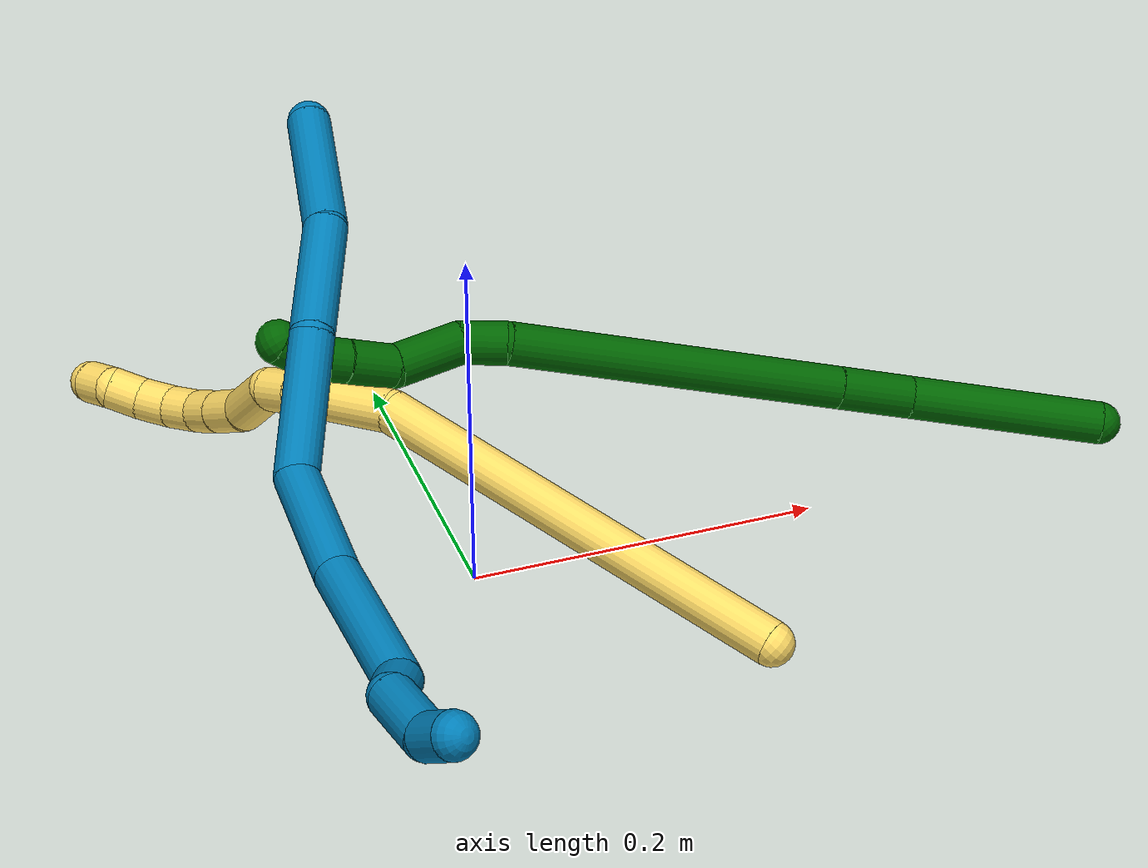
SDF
<sdf version="1.7">
 <world name="default">
  <model name="photoneo_s_sensor">
   <static>1</static>
   <pose>0 0 2 1.57079 1.57079 3.14159</pose>
   <link name="link">
    <inertial><mass>0.1</mass></inertial>
    <sensor name="sensor" type="depth">
     <update_rate>30</update_rate>
     <camera>
      <horizontal_fov>1.22</horizontal_fov>
      <image><width>1920</width><height>1200</height><format>B8G8R8</format></image>
      <clip><near>0.1</near><far>4</far></clip>
      <depth_camera><output>points</output></depth_camera>
     </camera>
     <plugin name="camera_plugin" filename="libgazebo_ros_depth_camera.so">
      <baseline>0.2</baseline>
      <alwaysOn>1</alwaysOn>
      <updateRate>0.0</updateRate>
      <cameraName>camera_ir</cameraName>
      <imageTopicName>/camera/color/image_raw</imageTopicName>
      <cameraInfoTopicName>/camera/color/camera_info</cameraInfoTopicName>
      <depthImageTopicName>/camera/depth/image_raw</depthImageTopicName>
      <depthImageCameraInfoTopicName>/camera/depth/camera_info</depthImageCameraInfoTopicName>
      <pointCloudTopicName>/camera/depth/points</pointCloudTopicName>
      <frameName>fr_optical</frameName>
      <pointCloudCutoff>0.1</pointCloudCutoff>
      <pointCloudCutoffMax>2.0</pointCloudCutoffMax>
      <distortionK1>0</distortionK1>
      <distortionK2>0</distortionK2>
      <distortionK3>0</distortionK3>
      <distortionT1>0</distortionT1>
      <distortionT2>0</distortionT2>
      <CxPrime>0</CxPrime>
      <Cx>0</Cx>
      <Cy>0</Cy>
      <focalLength>0</focalLength>
      <hackBaseline>0</hackBaseline>
     </plugin>
    </sensor>
   </link>
  </model>
  <model name="bin">
   <static>1</static>
   <link name="bottom">
    <collision name="collision-bottom">
     <pose>0 0 -0.01 0 -0 0</pose>
     <geometry><box><size>0.8 0.6 0.02</size></box></geometry>
     <surface>
      <friction><ode><mu>100</mu><mu2>100</mu2></ode></friction>
      <contact><collide_bitmask>65535</collide_bitmask></contact>
     </surface>
    </collision>
   </link>
   <link name="west_wall">
    <collision name="collision-west_wall">
     <pose>-0.41 0 0.1 0 -0 0</pose>
     <geometry><box><size>0.02 0.6 0.2</size></box></geometry>
     <surface>
      <friction><ode><mu>100</mu><mu2>100</mu2></ode></friction>
      <contact><collide_bitmask>65535</collide_bitmask></contact>
     </surface>
    </collision>
   </link>
   <link name="east_wall">
    <collision name="collision-east_wall">
     <pose>0.41 0 0.1 0 -0 0</pose>
     <geometry><box><size>0.02 0.6 0.2</size></box></geometry>
     <surface>
      <friction><ode><mu>100</mu><mu2>100</mu2></ode></friction>
      <contact><collide_bitmask>65535</collide_bitmask></contact>
     </surface>
    </collision>
   </link>
   <link name="south_wall">
    <collision name="collision-south_wall">
     <pose>0 -0.31 0.1 0 -0 0</pose>
     <geometry><box><size>0.8 0.02 0.2</size></box></geometry>
     <surface>
      <friction><ode><mu>100</mu><mu2>100</mu2></ode></friction>
      <contact><collide_bitmask>65535</collide_bitmask></contact>
     </surface>
    </collision>
   </link>
   <link name="north_wall">
    <collision name="collision-north_wall">
     <pose>0 0.31 0.1 0 -0 0</pose>
     <geometry><box><size>0.8 0.02 0.2</size></box></geometry>
     <surface>
      <friction><ode><mu>100</mu><mu2>100</mu2></ode></friction>
      <contact><collide_bitmask>65535</collide_bitmask></contact>
     </surface>
    </collision>
   </link>
  </model>
  <model name="5">
   <static>0</static>
   <link name="5">
    <collision name="collision-cylinder-e_1_1_4">
     <pose>-0.039297 0.060567 -0.10414 -2.61482 -0.315313 1.06541</pose>
     <geometry><cylinder><radius>0.0125</radius><length>0.253438</length></cylinder></geometry>
     <surface>
      <friction><ode><mu>1.16</mu><mu2>1.16</mu2><slip1>0</slip1><slip2>0</slip2></ode></friction>
      <contact><ode><kp>1e+06</kp><kd>1</kd><max_vel>0</max_vel><min_depth>0.001</min_depth></ode></contact>
     </surface>
    </collision>
    <visual name="visual-cylinder-e_1_1_4">
     <pose>-0.039297 0.060567 -0.10414 -2.61482 -0.315313 1.06541</pose>
     <geometry><cylinder><radius>0.0125</radius><length>0.253438</length></cylinder></geometry>
     <material><ambient>1 0.858824 0.4 1</ambient></material>
    </visual>
    <collision name="collision-cylinder-e_2_4_5">
     <pose>-0.083142 0.143078 -0.22891 -2.32537 -0.149844 0.343774</pose>
     <geometry><cylinder><radius>0.0125</radius><length>0.06092</length></cylinder></geometry>
     <surface>
      <friction><ode><mu>1.16</mu><mu2>1.16</mu2><slip1>0</slip1><slip2>0</slip2></ode></friction>
      <contact><ode><kp>1e+06</kp><kd>1</kd><max_vel>0</max_vel><min_depth>0.001</min_depth></ode></contact>
     </surface>
    </collision>
    <visual name="visual-cylinder-e_2_4_5">
     <pose>-0.083142 0.143078 -0.22891 -2.32537 -0.149844 0.343774</pose>
     <geometry><cylinder><radius>0.0125</radius><length>0.06092</length></cylinder></geometry>
     <material><ambient>1 0.858824 0.4 1</ambient></material>
    </visual>
    <collision name="collision-cylinder-e_3_5_6">
     <pose>-0.091238 0.173875 -0.254785 -2.10553 -0.332045 0.571883</pose>
     <geometry><cylinder><radius>0.0125</radius><length>0.02177</length></cylinder></geometry>
     <surface>
      <friction><ode><mu>1.16</mu><mu2>1.16</mu2><slip1>0</slip1><slip2>0</slip2></ode></friction>
      <contact><ode><kp>1e+06</kp><kd>1</kd><max_vel>0</max_vel><min_depth>0.001</min_depth></ode></contact>
     </surface>
    </collision>
    <visual name="visual-cylinder-e_3_5_6">
     <pose>-0.091238 0.173875 -0.254785 -2.10553 -0.332045 0.571883</pose>
     <geometry><cylinder><radius>0.0125</radius><length>0.02177</length></cylinder></geometry>
     <material><ambient>1 0.858824 0.4 1</ambient></material>
    </visual>
    <collision name="collision-cylinder-e_4_6_7">
     <pose>-0.100296 0.200286 -0.259446 -1.53758 -0.30397 0.294183</pose>
     <geometry><cylinder><radius>0.0125</radius><length>0.036822</length></cylinder></geometry>
     <surface>
      <friction><ode><mu>1.16</mu><mu2>1.16</mu2><slip1>0</slip1><slip2>0</slip2></ode></friction>
      <contact><ode><kp>1e+06</kp><kd>1</kd><max_vel>0</max_vel><min_depth>0.001</min_depth></ode></contact>
     </surface>
    </collision>
    <visual name="visual-cylinder-e_4_6_7">
     <pose>-0.100296 0.200286 -0.259446 -1.53758 -0.30397 0.294183</pose>
     <geometry><cylinder><radius>0.0125</radius><length>0.036822</length></cylinder></geometry>
     <material><ambient>1 0.858824 0.4 1</ambient></material>
    </visual>
    <collision name="collision-cylinder-e_5_7_8">
     <pose>-0.110284 0.228722 -0.262511 -1.8944 -0.371988 0.511696</pose>
     <geometry><cylinder><radius>0.0125</radius><length>0.024634</length></cylinder></geometry>
     <surface>
      <friction><ode><mu>1.16</mu><mu2>1.16</mu2><slip1>0</slip1><slip2>0</slip2></ode></friction>
      <contact><ode><kp>1e+06</kp><kd>1</kd><max_vel>0</max_vel><min_depth>0.001</min_depth></ode></contact>
     </surface>
    </collision>
    <visual name="visual-cylinder-e_5_7_8">
     <pose>-0.110284 0.228722 -0.262511 -1.8944 -0.371988 0.511696</pose>
     <geometry><cylinder><radius>0.0125</radius><length>0.024634</length></cylinder></geometry>
     <material><ambient>1 0.858824 0.4 1</ambient></material>
    </visual>
    <collision name="collision-cylinder-e_6_8_9">
     <pose>-0.11882 0.248512 -0.269625 -1.94172 -0.401505 0.578298</pose>
     <geometry><cylinder><radius>0.0125</radius><length>0.020774</length></cylinder></geometry>
     <surface>
      <friction><ode><mu>1.16</mu><mu2>1.16</mu2><slip1>0</slip1><slip2>0</slip2></ode></friction>
      <contact><ode><kp>1e+06</kp><kd>1</kd><max_vel>0</max_vel><min_depth>0.001</min_depth></ode></contact>
     </surface>
    </collision>
    <visual name="visual-cylinder-e_6_8_9">
     <pose>-0.11882 0.248512 -0.269625 -1.94172 -0.401505 0.578298</pose>
     <geometry><cylinder><radius>0.0125</radius><length>0.020774</length></cylinder></geometry>
     <material><ambient>1 0.858824 0.4 1</ambient></material>
    </visual>
    <collision name="collision-cylinder-e_7_9_10">
     <pose>-0.125722 0.265532 -0.278692 -2.17524 -0.280781 0.526229</pose>
     <geometry><cylinder><radius>0.0125</radius><length>0.020514</length></cylinder></geometry>
     <surface>
      <friction><ode><mu>1.16</mu><mu2>1.16</mu2><slip1>0</slip1><slip2>0</slip2></ode></friction>
      <contact><ode><kp>1e+06</kp><kd>1</kd><max_vel>0</max_vel><min_depth>0.001</min_depth></ode></contact>
     </surface>
    </collision>
    <visual name="visual-cylinder-e_7_9_10">
     <pose>-0.125722 0.265532 -0.278692 -2.17524 -0.280781 0.526229</pose>
     <geometry><cylinder><radius>0.0125</radius><length>0.020514</length></cylinder></geometry>
     <material><ambient>1 0.858824 0.4 1</ambient></material>
    </visual>
    <collision name="collision-cylinder-e_8_10_11">
     <pose>-0.13018 0.280763 -0.291846 -2.38561 -0.154481 0.384984</pose>
     <geometry><cylinder><radius>0.0125</radius><length>0.021012</length></cylinder></geometry>
     <surface>
      <friction><ode><mu>1.16</mu><mu2>1.16</mu2><slip1>0</slip1><slip2>0</slip2></ode></friction>
      <contact><ode><kp>1e+06</kp><kd>1</kd><max_vel>0</max_vel><min_depth>0.001</min_depth></ode></contact>
     </surface>
    </collision>
    <visual name="visual-cylinder-e_8_10_11">
     <pose>-0.13018 0.280763 -0.291846 -2.38561 -0.154481 0.384984</pose>
     <geometry><cylinder><radius>0.0125</radius><length>0.021012</length></cylinder></geometry>
     <material><ambient>1 0.858824 0.4 1</ambient></material>
    </visual>
    <collision name="collision-cylinder-e_9_11_12">
     <pose>-0.131747 0.292696 -0.308177 -2.64016 0.004979 -0.019441</pose>
     <geometry><cylinder><radius>0.0125</radius><length>0.020022</length></cylinder></geometry>
     <surface>
      <friction><ode><mu>1.16</mu><mu2>1.16</mu2><slip1>0</slip1><slip2>0</slip2></ode></friction>
      <contact><ode><kp>1e+06</kp><kd>1</kd><max_vel>0</max_vel><min_depth>0.001</min_depth></ode></contact>
     </surface>
    </collision>
    <visual name="visual-cylinder-e_9_11_12">
     <pose>-0.131747 0.292696 -0.308177 -2.64016 0.004979 -0.019441</pose>
     <geometry><cylinder><radius>0.0125</radius><length>0.020022</length></cylinder></geometry>
     <material><ambient>1 0.858824 0.4 1</ambient></material>
    </visual>
    <collision name="collision-cylinder-e_10_12_2">
     <pose>-0.13575 0.305183 -0.322016 -2.15373 -0.415234 0.745834</pose>
     <geometry><cylinder><radius>0.0125</radius><length>0.020094</length></cylinder></geometry>
     <surface>
      <friction><ode><mu>1.16</mu><mu2>1.16</mu2><slip1>0</slip1><slip2>0</slip2></ode></friction>
      <contact><ode><kp>1e+06</kp><kd>1</kd><max_vel>0</max_vel><min_depth>0.001</min_depth></ode></contact>
     </surface>
    </collision>
    <visual name="visual-cylinder-e_10_12_2">
     <pose>-0.13575 0.305183 -0.322016 -2.15373 -0.415234 0.745834</pose>
     <geometry><cylinder><radius>0.0125</radius><length>0.020094</length></cylinder></geometry>
     <material><ambient>1 0.858824 0.4 1</ambient></material>
    </visual>
    <collision name="collision-sphere-2">
     <pose>-0.139803 0.312858 -0.327077 0 -0 0</pose>
     <geometry><sphere><radius>0.0125</radius></sphere></geometry>
     <surface>
      <friction><ode><mu>1.16</mu><mu2>1.16</mu2><slip1>0</slip1><slip2>0</slip2></ode></friction>
      <contact><ode><kp>1e+06</kp><kd>1</kd><max_vel>0</max_vel><min_depth>0.001</min_depth></ode></contact>
     </surface>
    </collision>
    <visual name="visual-sphere-2">
     <pose>-0.139803 0.312858 -0.327077 0 -0 0</pose>
     <geometry><sphere><radius>0.0125</radius></sphere></geometry>
     <material><ambient>1 0.858824 0.4 1</ambient></material>
    </visual>
    <collision name="collision-sphere-12">
     <pose>-0.131697 0.297508 -0.316956 0 -0 0</pose>
     <geometry><sphere><radius>0.0125</radius></sphere></geometry>
     <surface>
      <friction><ode><mu>1.16</mu><mu2>1.16</mu2><slip1>0</slip1><slip2>0</slip2></ode></friction>
      <contact><ode><kp>1e+06</kp><kd>1</kd><max_vel>0</max_vel><min_depth>0.001</min_depth></ode></contact>
     </surface>
    </collision>
    <visual name="visual-sphere-12">
     <pose>-0.131697 0.297508 -0.316956 0 -0 0</pose>
     <geometry><sphere><radius>0.0125</radius></sphere></geometry>
     <material><ambient>1 0.858824 0.4 1</ambient></material>
    </visual>
    <collision name="collision-sphere-11">
     <pose>-0.131797 0.287884 -0.299399 0 -0 0</pose>
     <geometry><sphere><radius>0.0125</radius></sphere></geometry>
     <surface>
      <friction><ode><mu>1.16</mu><mu2>1.16</mu2><slip1>0</slip1><slip2>0</slip2></ode></friction>
      <contact><ode><kp>1e+06</kp><kd>1</kd><max_vel>0</max_vel><min_depth>0.001</min_depth></ode></contact>
     </surface>
    </collision>
    <visual name="visual-sphere-11">
     <pose>-0.131797 0.287884 -0.299399 0 -0 0</pose>
     <geometry><sphere><radius>0.0125</radius></sphere></geometry>
     <material><ambient>1 0.858824 0.4 1</ambient></material>
    </visual>
    <collision name="collision-sphere-10">
     <pose>-0.128564 0.273641 -0.284293 0 -0 0</pose>
     <geometry><sphere><radius>0.0125</radius></sphere></geometry>
     <surface>
      <friction><ode><mu>1.16</mu><mu2>1.16</mu2><slip1>0</slip1><slip2>0</slip2></ode></friction>
      <contact><ode><kp>1e+06</kp><kd>1</kd><max_vel>0</max_vel><min_depth>0.001</min_depth></ode></contact>
     </surface>
    </collision>
    <visual name="visual-sphere-10">
     <pose>-0.128564 0.273641 -0.284293 0 -0 0</pose>
     <geometry><sphere><radius>0.0125</radius></sphere></geometry>
     <material><ambient>1 0.858824 0.4 1</ambient></material>
    </visual>
    <collision name="collision-sphere-9">
     <pose>-0.122879 0.257423 -0.273091 0 -0 0</pose>
     <geometry><sphere><radius>0.0125</radius></sphere></geometry>
     <surface>
      <friction><ode><mu>1.16</mu><mu2>1.16</mu2><slip1>0</slip1><slip2>0</slip2></ode></friction>
      <contact><ode><kp>1e+06</kp><kd>1</kd><max_vel>0</max_vel><min_depth>0.001</min_depth></ode></contact>
     </surface>
    </collision>
    <visual name="visual-sphere-9">
     <pose>-0.122879 0.257423 -0.273091 0 -0 0</pose>
     <geometry><sphere><radius>0.0125</radius></sphere></geometry>
     <material><ambient>1 0.858824 0.4 1</ambient></material>
    </visual>
    <collision name="collision-sphere-4">
     <pose>-0.078595 0.121134 -0.208279 0 -0 0</pose>
     <geometry><sphere><radius>0.0125</radius></sphere></geometry>
     <surface>
      <friction><ode><mu>1.16</mu><mu2>1.16</mu2><slip1>0</slip1><slip2>0</slip2></ode></friction>
      <contact><ode><kp>1e+06</kp><kd>1</kd><max_vel>0</max_vel><min_depth>0.001</min_depth></ode></contact>
     </surface>
    </collision>
    <visual name="visual-sphere-4">
     <pose>-0.078595 0.121134 -0.208279 0 -0 0</pose>
     <geometry><sphere><radius>0.0125</radius></sphere></geometry>
     <material><ambient>1 0.858824 0.4 1</ambient></material>
    </visual>
    <collision name="collision-sphere-1">
     <geometry><sphere><radius>0.0125</radius></sphere></geometry>
     <surface>
      <friction><ode><mu>1.16</mu><mu2>1.16</mu2><slip1>0</slip1><slip2>0</slip2></ode></friction>
      <contact><ode><kp>1e+06</kp><kd>1</kd><max_vel>0</max_vel><min_depth>0.001</min_depth></ode></contact>
     </surface>
    </collision>
    <visual name="visual-sphere-1">
     <geometry><sphere><radius>0.0125</radius></sphere></geometry>
     <material><ambient>1 0.858824 0.4 1</ambient></material>
    </visual>
    <collision name="collision-sphere-8">
     <pose>-0.114761 0.239601 -0.26616 0 -0 0</pose>
     <geometry><sphere><radius>0.0125</radius></sphere></geometry>
     <surface>
      <friction><ode><mu>1.16</mu><mu2>1.16</mu2><slip1>0</slip1><slip2>0</slip2></ode></friction>
      <contact><ode><kp>1e+06</kp><kd>1</kd><max_vel>0</max_vel><min_depth>0.001</min_depth></ode></contact>
     </surface>
    </collision>
    <visual name="visual-sphere-8">
     <pose>-0.114761 0.239601 -0.26616 0 -0 0</pose>
     <geometry><sphere><radius>0.0125</radius></sphere></geometry>
     <material><ambient>1 0.858824 0.4 1</ambient></material>
    </visual>
    <collision name="collision-sphere-5">
     <pose>-0.087689 0.165021 -0.249541 0 -0 0</pose>
     <geometry><sphere><radius>0.0125</radius></sphere></geometry>
     <surface>
      <friction><ode><mu>1.16</mu><mu2>1.16</mu2><slip1>0</slip1><slip2>0</slip2></ode></friction>
      <contact><ode><kp>1e+06</kp><kd>1</kd><max_vel>0</max_vel><min_depth>0.001</min_depth></ode></contact>
     </surface>
    </collision>
    <visual name="visual-sphere-5">
     <pose>-0.087689 0.165021 -0.249541 0 -0 0</pose>
     <geometry><sphere><radius>0.0125</radius></sphere></geometry>
     <material><ambient>1 0.858824 0.4 1</ambient></material>
    </visual>
    <collision name="collision-sphere-6">
     <pose>-0.094786 0.182729 -0.260029 0 -0 0</pose>
     <geometry><sphere><radius>0.0125</radius></sphere></geometry>
     <surface>
      <friction><ode><mu>1.16</mu><mu2>1.16</mu2><slip1>0</slip1><slip2>0</slip2></ode></friction>
      <contact><ode><kp>1e+06</kp><kd>1</kd><max_vel>0</max_vel><min_depth>0.001</min_depth></ode></contact>
     </surface>
    </collision>
    <visual name="visual-sphere-6">
     <pose>-0.094786 0.182729 -0.260029 0 -0 0</pose>
     <geometry><sphere><radius>0.0125</radius></sphere></geometry>
     <material><ambient>1 0.858824 0.4 1</ambient></material>
    </visual>
    <collision name="collision-sphere-7">
     <pose>-0.105807 0.217843 -0.258862 0 -0 0</pose>
     <geometry><sphere><radius>0.0125</radius></sphere></geometry>
     <surface>
      <friction><ode><mu>1.16</mu><mu2>1.16</mu2><slip1>0</slip1><slip2>0</slip2></ode></friction>
      <contact><ode><kp>1e+06</kp><kd>1</kd><max_vel>0</max_vel><min_depth>0.001</min_depth></ode></contact>
     </surface>
    </collision>
    <visual name="visual-sphere-7">
     <pose>-0.105807 0.217843 -0.258862 0 -0 0</pose>
     <geometry><sphere><radius>0.0125</radius></sphere></geometry>
     <material><ambient>1 0.858824 0.4 1</ambient></material>
    </visual>
    <inertial>
     <pose>-0.073138 0.138725 -0.183992 0 -0 0</pose>
     <mass>0.5</mass>
     <inertia>
      <ixx>0.001803</ixx>
      <ixy>0</ixy>
      <ixz>0</ixz>
      <iyy>0.000773</iyy>
      <iyz>0</iyz>
      <izz>-0.000276</izz>
     </inertia>
    </inertial>
   </link>
   <pose>0.119752 -0.136232 0.022837 -2.30204 0.055838 -2.20296</pose>
  </model>
  <model name="6">
   <static>0</static>
   <link name="6">
    <collision name="collision-cylinder-e_1_1_4">
     <pose>-0.037699 0.009367 -0.041519 -2.91971 -0.724884 2.57011</pose>
     <geometry><cylinder><radius>0.0125</radius><length>0.113715</length></cylinder></geometry>
     <surface>
      <friction><ode><mu>1.16</mu><mu2>1.16</mu2><slip1>0</slip1><slip2>0</slip2></ode></friction>
      <contact><ode><kp>1e+06</kp><kd>1</kd><max_vel>0</max_vel><min_depth>0.001</min_depth></ode></contact>
     </surface>
    </collision>
    <visual name="visual-cylinder-e_1_1_4">
     <pose>-0.037699 0.009367 -0.041519 -2.91971 -0.724884 2.57011</pose>
     <geometry><cylinder><radius>0.0125</radius><length>0.113715</length></cylinder></geometry>
     <material><ambient>0 0.392157 0.003922 1</ambient></material>
    </visual>
    <collision name="collision-cylinder-e_2_4_5">
     <pose>-0.093296 0.018456 -0.097214 3.12203 -0.900785 -3.10114</pose>
     <geometry><cylinder><radius>0.0125</radius><length>0.045667</length></cylinder></geometry>
     <surface>
      <friction><ode><mu>1.16</mu><mu2>1.16</mu2><slip1>0</slip1><slip2>0</slip2></ode></friction>
      <contact><ode><kp>1e+06</kp><kd>1</kd><max_vel>0</max_vel><min_depth>0.001</min_depth></ode></contact>
     </surface>
    </collision>
    <visual name="visual-cylinder-e_2_4_5">
     <pose>-0.093296 0.018456 -0.097214 3.12203 -0.900785 -3.10114</pose>
     <geometry><cylinder><radius>0.0125</radius><length>0.045667</length></cylinder></geometry>
     <material><ambient>0 0.392157 0.003922 1</ambient></material>
    </visual>
    <collision name="collision-cylinder-e_3_5_6">
     <pose>-0.189592 0.017222 -0.173845 3.12629 -0.898063 -3.10983</pose>
     <geometry><cylinder><radius>0.0125</radius><length>0.200478</length></cylinder></geometry>
     <surface>
      <friction><ode><mu>1.16</mu><mu2>1.16</mu2><slip1>0</slip1><slip2>0</slip2></ode></friction>
      <contact><ode><kp>1e+06</kp><kd>1</kd><max_vel>0</max_vel><min_depth>0.001</min_depth></ode></contact>
     </surface>
    </collision>
    <visual name="visual-cylinder-e_3_5_6">
     <pose>-0.189592 0.017222 -0.173845 3.12629 -0.898063 -3.10983</pose>
     <geometry><cylinder><radius>0.0125</radius><length>0.200478</length></cylinder></geometry>
     <material><ambient>0 0.392157 0.003922 1</ambient></material>
    </visual>
    <collision name="collision-cylinder-e_4_6_7">
     <pose>-0.27595 0.017586 -0.247043 -3.01939 -0.634013 2.77287</pose>
     <geometry><cylinder><radius>0.0125</radius><length>0.026872</length></cylinder></geometry>
     <surface>
      <friction><ode><mu>1.16</mu><mu2>1.16</mu2><slip1>0</slip1><slip2>0</slip2></ode></friction>
      <contact><ode><kp>1e+06</kp><kd>1</kd><max_vel>0</max_vel><min_depth>0.001</min_depth></ode></contact>
     </surface>
    </collision>
    <visual name="visual-cylinder-e_4_6_7">
     <pose>-0.27595 0.017586 -0.247043 -3.01939 -0.634013 2.77287</pose>
     <geometry><cylinder><radius>0.0125</radius><length>0.026872</length></cylinder></geometry>
     <material><ambient>0 0.392157 0.003922 1</ambient></material>
    </visual>
    <collision name="collision-cylinder-e_5_7_8">
     <pose>-0.296592 0.009144 -0.272322 2.55019 -0.626906 -1.63282</pose>
     <geometry><cylinder><radius>0.0125</radius><length>0.043239</length></cylinder></geometry>
     <surface>
      <friction><ode><mu>1.16</mu><mu2>1.16</mu2><slip1>0</slip1><slip2>0</slip2></ode></friction>
      <contact><ode><kp>1e+06</kp><kd>1</kd><max_vel>0</max_vel><min_depth>0.001</min_depth></ode></contact>
     </surface>
    </collision>
    <visual name="visual-cylinder-e_5_7_8">
     <pose>-0.296592 0.009144 -0.272322 2.55019 -0.626906 -1.63282</pose>
     <geometry><cylinder><radius>0.0125</radius><length>0.043239</length></cylinder></geometry>
     <material><ambient>0 0.392157 0.003922 1</ambient></material>
    </visual>
    <collision name="collision-cylinder-e_6_8_9">
     <pose>-0.321041 -0.002706 -0.294252 2.8663 -0.992232 -2.64051</pose>
     <geometry><cylinder><radius>0.0125</radius><length>0.028105</length></cylinder></geometry>
     <surface>
      <friction><ode><mu>1.16</mu><mu2>1.16</mu2><slip1>0</slip1><slip2>0</slip2></ode></friction>
      <contact><ode><kp>1e+06</kp><kd>1</kd><max_vel>0</max_vel><min_depth>0.001</min_depth></ode></contact>
     </surface>
    </collision>
    <visual name="visual-cylinder-e_6_8_9">
     <pose>-0.321041 -0.002706 -0.294252 2.8663 -0.992232 -2.64051</pose>
     <geometry><cylinder><radius>0.0125</radius><length>0.028105</length></cylinder></geometry>
     <material><ambient>0 0.392157 0.003922 1</ambient></material>
    </visual>
    <collision name="collision-cylinder-e_7_9_10">
     <pose>-0.341165 -0.006008 -0.307351 2.93198 -0.961623 -2.74362</pose>
     <geometry><cylinder><radius>0.0125</radius><length>0.020383</length></cylinder></geometry>
     <surface>
      <friction><ode><mu>1.16</mu><mu2>1.16</mu2><slip1>0</slip1><slip2>0</slip2></ode></friction>
      <contact><ode><kp>1e+06</kp><kd>1</kd><max_vel>0</max_vel><min_depth>0.001</min_depth></ode></contact>
     </surface>
    </collision>
    <visual name="visual-cylinder-e_7_9_10">
     <pose>-0.341165 -0.006008 -0.307351 2.93198 -0.961623 -2.74362</pose>
     <geometry><cylinder><radius>0.0125</radius><length>0.020383</length></cylinder></geometry>
     <material><ambient>0 0.392157 0.003922 1</ambient></material>
    </visual>
    <collision name="collision-cylinder-e_8_10_2">
     <pose>-0.359609 -0.006542 -0.316772 -2.96067 -1.21237 2.88138</pose>
     <geometry><cylinder><radius>0.0125</radius><length>0.021541</length></cylinder></geometry>
     <surface>
      <friction><ode><mu>1.16</mu><mu2>1.16</mu2><slip1>0</slip1><slip2>0</slip2></ode></friction>
      <contact><ode><kp>1e+06</kp><kd>1</kd><max_vel>0</max_vel><min_depth>0.001</min_depth></ode></contact>
     </surface>
    </collision>
    <visual name="visual-cylinder-e_8_10_2">
     <pose>-0.359609 -0.006542 -0.316772 -2.96067 -1.21237 2.88138</pose>
     <geometry><cylinder><radius>0.0125</radius><length>0.021541</length></cylinder></geometry>
     <material><ambient>0 0.392157 0.003922 1</ambient></material>
    </visual>
    <collision name="collision-sphere-2">
     <pose>-0.369695 -0.005862 -0.320488 0 -0 0</pose>
     <geometry><sphere><radius>0.0125</radius></sphere></geometry>
     <surface>
      <friction><ode><mu>1.16</mu><mu2>1.16</mu2><slip1>0</slip1><slip2>0</slip2></ode></friction>
      <contact><ode><kp>1e+06</kp><kd>1</kd><max_vel>0</max_vel><min_depth>0.001</min_depth></ode></contact>
     </surface>
    </collision>
    <visual name="visual-sphere-2">
     <pose>-0.369695 -0.005862 -0.320488 0 -0 0</pose>
     <geometry><sphere><radius>0.0125</radius></sphere></geometry>
     <material><ambient>0 0.392157 0.003922 1</ambient></material>
    </visual>
    <collision name="collision-sphere-10">
     <pose>-0.349523 -0.007222 -0.313055 0 -0 0</pose>
     <geometry><sphere><radius>0.0125</radius></sphere></geometry>
     <surface>
      <friction><ode><mu>1.16</mu><mu2>1.16</mu2><slip1>0</slip1><slip2>0</slip2></ode></friction>
      <contact><ode><kp>1e+06</kp><kd>1</kd><max_vel>0</max_vel><min_depth>0.001</min_depth></ode></contact>
     </surface>
    </collision>
    <visual name="visual-sphere-10">
     <pose>-0.349523 -0.007222 -0.313055 0 -0 0</pose>
     <geometry><sphere><radius>0.0125</radius></sphere></geometry>
     <material><ambient>0 0.392157 0.003922 1</ambient></material>
    </visual>
    <collision name="collision-sphere-9">
     <pose>-0.332806 -0.004795 -0.301647 0 -0 0</pose>
     <geometry><sphere><radius>0.0125</radius></sphere></geometry>
     <surface>
      <friction><ode><mu>1.16</mu><mu2>1.16</mu2><slip1>0</slip1><slip2>0</slip2></ode></friction>
      <contact><ode><kp>1e+06</kp><kd>1</kd><max_vel>0</max_vel><min_depth>0.001</min_depth></ode></contact>
     </surface>
    </collision>
    <visual name="visual-sphere-9">
     <pose>-0.332806 -0.004795 -0.301647 0 -0 0</pose>
     <geometry><sphere><radius>0.0125</radius></sphere></geometry>
     <material><ambient>0 0.392157 0.003922 1</ambient></material>
    </visual>
    <collision name="collision-sphere-4">
     <pose>-0.075398 0.018733 -0.083037 0 -0 0</pose>
     <geometry><sphere><radius>0.0125</radius></sphere></geometry>
     <surface>
      <friction><ode><mu>1.16</mu><mu2>1.16</mu2><slip1>0</slip1><slip2>0</slip2></ode></friction>
      <contact><ode><kp>1e+06</kp><kd>1</kd><max_vel>0</max_vel><min_depth>0.001</min_depth></ode></contact>
     </surface>
    </collision>
    <visual name="visual-sphere-4">
     <pose>-0.075398 0.018733 -0.083037 0 -0 0</pose>
     <geometry><sphere><radius>0.0125</radius></sphere></geometry>
     <material><ambient>0 0.392157 0.003922 1</ambient></material>
    </visual>
    <collision name="collision-sphere-1">
     <geometry><sphere><radius>0.0125</radius></sphere></geometry>
     <surface>
      <friction><ode><mu>1.16</mu><mu2>1.16</mu2><slip1>0</slip1><slip2>0</slip2></ode></friction>
      <contact><ode><kp>1e+06</kp><kd>1</kd><max_vel>0</max_vel><min_depth>0.001</min_depth></ode></contact>
     </surface>
    </collision>
    <visual name="visual-sphere-1">
     <geometry><sphere><radius>0.0125</radius></sphere></geometry>
     <material><ambient>0 0.392157 0.003922 1</ambient></material>
    </visual>
    <collision name="collision-sphere-8">
     <pose>-0.309275 -0.000617 -0.286857 0 -0 0</pose>
     <geometry><sphere><radius>0.0125</radius></sphere></geometry>
     <surface>
      <friction><ode><mu>1.16</mu><mu2>1.16</mu2><slip1>0</slip1><slip2>0</slip2></ode></friction>
      <contact><ode><kp>1e+06</kp><kd>1</kd><max_vel>0</max_vel><min_depth>0.001</min_depth></ode></contact>
     </surface>
    </collision>
    <visual name="visual-sphere-8">
     <pose>-0.309275 -0.000617 -0.286857 0 -0 0</pose>
     <geometry><sphere><radius>0.0125</radius></sphere></geometry>
     <material><ambient>0 0.392157 0.003922 1</ambient></material>
    </visual>
    <collision name="collision-sphere-5">
     <pose>-0.111193 0.018178 -0.111391 0 -0 0</pose>
     <geometry><sphere><radius>0.0125</radius></sphere></geometry>
     <surface>
      <friction><ode><mu>1.16</mu><mu2>1.16</mu2><slip1>0</slip1><slip2>0</slip2></ode></friction>
      <contact><ode><kp>1e+06</kp><kd>1</kd><max_vel>0</max_vel><min_depth>0.001</min_depth></ode></contact>
     </surface>
    </collision>
    <visual name="visual-sphere-5">
     <pose>-0.111193 0.018178 -0.111391 0 -0 0</pose>
     <geometry><sphere><radius>0.0125</radius></sphere></geometry>
     <material><ambient>0 0.392157 0.003922 1</ambient></material>
    </visual>
    <collision name="collision-sphere-6">
     <pose>-0.267991 0.016266 -0.236299 0 -0 0</pose>
     <geometry><sphere><radius>0.0125</radius></sphere></geometry>
     <surface>
      <friction><ode><mu>1.16</mu><mu2>1.16</mu2><slip1>0</slip1><slip2>0</slip2></ode></friction>
      <contact><ode><kp>1e+06</kp><kd>1</kd><max_vel>0</max_vel><min_depth>0.001</min_depth></ode></contact>
     </surface>
    </collision>
    <visual name="visual-sphere-6">
     <pose>-0.267991 0.016266 -0.236299 0 -0 0</pose>
     <geometry><sphere><radius>0.0125</radius></sphere></geometry>
     <material><ambient>0 0.392157 0.003922 1</ambient></material>
    </visual>
    <collision name="collision-sphere-7">
     <pose>-0.283909 0.018906 -0.257788 0 -0 0</pose>
     <geometry><sphere><radius>0.0125</radius></sphere></geometry>
     <surface>
      <friction><ode><mu>1.16</mu><mu2>1.16</mu2><slip1>0</slip1><slip2>0</slip2></ode></friction>
      <contact><ode><kp>1e+06</kp><kd>1</kd><max_vel>0</max_vel><min_depth>0.001</min_depth></ode></contact>
     </surface>
    </collision>
    <visual name="visual-sphere-7">
     <pose>-0.283909 0.018906 -0.257788 0 -0 0</pose>
     <geometry><sphere><radius>0.0125</radius></sphere></geometry>
     <material><ambient>0 0.392157 0.003922 1</ambient></material>
    </visual>
    <inertial>
     <pose>-0.181039 0.011778 -0.167569 0 -0 0</pose>
     <mass>0.5</mass>
     <inertia>
      <ixx>-0.000512</ixx>
      <ixy>0</ixy>
      <ixz>0</ixz>
      <iyy>0.000845</iyy>
      <iyz>0</iyz>
      <izz>0.0006</izz>
     </inertia>
    </inertial>
   </link>
   <pose>0.388503 0.008076 0.011913 0.362778 0.915181 0.068497</pose>
  </model>
  <model name="9">
   <static>0</static>
   <link name="9">
    <collision name="collision-cylinder-e_1_1_4">
     <pose>-0.000506 -0.000716 0.011689 0.061139 -0.043151 -0.00132</pose>
     <geometry><cylinder><radius>0.0125</radius><length>0.023443</length></cylinder></geometry>
     <surface>
      <friction><ode><mu>1.16</mu><mu2>1.16</mu2><slip1>0</slip1><slip2>0</slip2></ode></friction>
      <contact><ode><kp>1e+06</kp><kd>1</kd><max_vel>0</max_vel><min_depth>0.001</min_depth></ode></contact>
     </surface>
    </collision>
    <visual name="visual-cylinder-e_1_1_4">
     <pose>-0.000506 -0.000716 0.011689 0.061139 -0.043151 -0.00132</pose>
     <geometry><cylinder><radius>0.0125</radius><length>0.023443</length></cylinder></geometry>
     <material><ambient>0 0.490196 0.709804 1</ambient></material>
    </visual>
    <collision name="collision-cylinder-e_2_4_5">
     <pose>-0.002334 0.007809 0.042449 -0.451167 -0.06235 0.014313</pose>
     <geometry><cylinder><radius>0.0125</radius><length>0.042467</length></cylinder></geometry>
     <surface>
      <friction><ode><mu>1.16</mu><mu2>1.16</mu2><slip1>0</slip1><slip2>0</slip2></ode></friction>
      <contact><ode><kp>1e+06</kp><kd>1</kd><max_vel>0</max_vel><min_depth>0.001</min_depth></ode></contact>
     </surface>
    </collision>
    <visual name="visual-cylinder-e_2_4_5">
     <pose>-0.002334 0.007809 0.042449 -0.451167 -0.06235 0.014313</pose>
     <geometry><cylinder><radius>0.0125</radius><length>0.042467</length></cylinder></geometry>
     <material><ambient>0 0.490196 0.709804 1</ambient></material>
    </visual>
    <collision name="collision-cylinder-e_3_5_6">
     <pose>-0.010436 0.021186 0.06945 -0.480845 -0.648633 0.164471</pose>
     <geometry><cylinder><radius>0.0125</radius><length>0.022443</length></cylinder></geometry>
     <surface>
      <friction><ode><mu>1.16</mu><mu2>1.16</mu2><slip1>0</slip1><slip2>0</slip2></ode></friction>
      <contact><ode><kp>1e+06</kp><kd>1</kd><max_vel>0</max_vel><min_depth>0.001</min_depth></ode></contact>
     </surface>
    </collision>
    <visual name="visual-cylinder-e_3_5_6">
     <pose>-0.010436 0.021186 0.06945 -0.480845 -0.648633 0.164471</pose>
     <geometry><cylinder><radius>0.0125</radius><length>0.022443</length></cylinder></geometry>
     <material><ambient>0 0.490196 0.709804 1</ambient></material>
    </visual>
    <collision name="collision-cylinder-e_4_6_7">
     <pose>-0.018749 0.051851 0.113291 -0.636238 -0.034345 0.011311</pose>
     <geometry><cylinder><radius>0.0125</radius><length>0.08935</length></cylinder></geometry>
     <surface>
      <friction><ode><mu>1.16</mu><mu2>1.16</mu2><slip1>0</slip1><slip2>0</slip2></ode></friction>
      <contact><ode><kp>1e+06</kp><kd>1</kd><max_vel>0</max_vel><min_depth>0.001</min_depth></ode></contact>
     </surface>
    </collision>
    <visual name="visual-cylinder-e_4_6_7">
     <pose>-0.018749 0.051851 0.113291 -0.636238 -0.034345 0.011311</pose>
     <geometry><cylinder><radius>0.0125</radius><length>0.08935</length></cylinder></geometry>
     <material><ambient>0 0.490196 0.709804 1</ambient></material>
    </visual>
    <collision name="collision-cylinder-e_5_7_8">
     <pose>-0.021607 0.104645 0.176683 -0.762792 -0.034797 0.013956</pose>
     <geometry><cylinder><radius>0.0125</radius><length>0.076072</length></cylinder></geometry>
     <surface>
      <friction><ode><mu>1.16</mu><mu2>1.16</mu2><slip1>0</slip1><slip2>0</slip2></ode></friction>
      <contact><ode><kp>1e+06</kp><kd>1</kd><max_vel>0</max_vel><min_depth>0.001</min_depth></ode></contact>
     </surface>
    </collision>
    <visual name="visual-cylinder-e_5_7_8">
     <pose>-0.021607 0.104645 0.176683 -0.762792 -0.034797 0.013956</pose>
     <geometry><cylinder><radius>0.0125</radius><length>0.076072</length></cylinder></geometry>
     <material><ambient>0 0.490196 0.709804 1</ambient></material>
    </visual>
    <collision name="collision-cylinder-e_6_8_9">
     <pose>-0.027311 0.170437 0.210861 -1.40294 -0.108843 0.091977</pose>
     <geometry><cylinder><radius>0.0125</radius><length>0.080659</length></cylinder></geometry>
     <surface>
      <friction><ode><mu>1.16</mu><mu2>1.16</mu2><slip1>0</slip1><slip2>0</slip2></ode></friction>
      <contact><ode><kp>1e+06</kp><kd>1</kd><max_vel>0</max_vel><min_depth>0.001</min_depth></ode></contact>
     </surface>
    </collision>
    <visual name="visual-cylinder-e_6_8_9">
     <pose>-0.027311 0.170437 0.210861 -1.40294 -0.108843 0.091977</pose>
     <geometry><cylinder><radius>0.0125</radius><length>0.080659</length></cylinder></geometry>
     <material><ambient>0 0.490196 0.709804 1</ambient></material>
    </visual>
    <collision name="collision-cylinder-e_7_9_10">
     <pose>-0.042063 0.243018 0.233692 -1.11674 -0.274846 0.172351</pose>
     <geometry><cylinder><radius>0.0125</radius><length>0.076431</length></cylinder></geometry>
     <surface>
      <friction><ode><mu>1.16</mu><mu2>1.16</mu2><slip1>0</slip1><slip2>0</slip2></ode></friction>
      <contact><ode><kp>1e+06</kp><kd>1</kd><max_vel>0</max_vel><min_depth>0.001</min_depth></ode></contact>
     </surface>
    </collision>
    <visual name="visual-cylinder-e_7_9_10">
     <pose>-0.042063 0.243018 0.233692 -1.11674 -0.274846 0.172351</pose>
     <geometry><cylinder><radius>0.0125</radius><length>0.076431</length></cylinder></geometry>
     <material><ambient>0 0.490196 0.709804 1</ambient></material>
    </visual>
    <collision name="collision-cylinder-e_8_10_2">
     <pose>-0.059386 0.310879 0.276777 -0.911908 -0.156612 0.076925</pose>
     <geometry><cylinder><radius>0.0125</radius><length>0.089135</length></cylinder></geometry>
     <surface>
      <friction><ode><mu>1.16</mu><mu2>1.16</mu2><slip1>0</slip1><slip2>0</slip2></ode></friction>
      <contact><ode><kp>1e+06</kp><kd>1</kd><max_vel>0</max_vel><min_depth>0.001</min_depth></ode></contact>
     </surface>
    </collision>
    <visual name="visual-cylinder-e_8_10_2">
     <pose>-0.059386 0.310879 0.276777 -0.911908 -0.156612 0.076925</pose>
     <geometry><cylinder><radius>0.0125</radius><length>0.089135</length></cylinder></geometry>
     <material><ambient>0 0.490196 0.709804 1</ambient></material>
    </visual>
    <collision name="collision-sphere-2">
     <pose>-0.066337 0.345686 0.303729 0 -0 0</pose>
     <geometry><sphere><radius>0.0125</radius></sphere></geometry>
     <surface>
      <friction><ode><mu>1.16</mu><mu2>1.16</mu2><slip1>0</slip1><slip2>0</slip2></ode></friction>
      <contact><ode><kp>1e+06</kp><kd>1</kd><max_vel>0</max_vel><min_depth>0.001</min_depth></ode></contact>
     </surface>
    </collision>
    <visual name="visual-sphere-2">
     <pose>-0.066337 0.345686 0.303729 0 -0 0</pose>
     <geometry><sphere><radius>0.0125</radius></sphere></geometry>
     <material><ambient>0 0.490196 0.709804 1</ambient></material>
    </visual>
    <collision name="collision-sphere-10">
     <pose>-0.052435 0.276072 0.249825 0 -0 0</pose>
     <geometry><sphere><radius>0.0125</radius></sphere></geometry>
     <surface>
      <friction><ode><mu>1.16</mu><mu2>1.16</mu2><slip1>0</slip1><slip2>0</slip2></ode></friction>
      <contact><ode><kp>1e+06</kp><kd>1</kd><max_vel>0</max_vel><min_depth>0.001</min_depth></ode></contact>
     </surface>
    </collision>
    <visual name="visual-sphere-10">
     <pose>-0.052435 0.276072 0.249825 0 -0 0</pose>
     <geometry><sphere><radius>0.0125</radius></sphere></geometry>
     <material><ambient>0 0.490196 0.709804 1</ambient></material>
    </visual>
    <collision name="collision-sphere-9">
     <pose>-0.031692 0.209964 0.217559 0 -0 0</pose>
     <geometry><sphere><radius>0.0125</radius></sphere></geometry>
     <surface>
      <friction><ode><mu>1.16</mu><mu2>1.16</mu2><slip1>0</slip1><slip2>0</slip2></ode></friction>
      <contact><ode><kp>1e+06</kp><kd>1</kd><max_vel>0</max_vel><min_depth>0.001</min_depth></ode></contact>
     </surface>
    </collision>
    <visual name="visual-sphere-9">
     <pose>-0.031692 0.209964 0.217559 0 -0 0</pose>
     <geometry><sphere><radius>0.0125</radius></sphere></geometry>
     <material><ambient>0 0.490196 0.709804 1</ambient></material>
    </visual>
    <collision name="collision-sphere-4">
     <pose>-0.001011 -0.001431 0.023378 0 -0 0</pose>
     <geometry><sphere><radius>0.0125</radius></sphere></geometry>
     <surface>
      <friction><ode><mu>1.16</mu><mu2>1.16</mu2><slip1>0</slip1><slip2>0</slip2></ode></friction>
      <contact><ode><kp>1e+06</kp><kd>1</kd><max_vel>0</max_vel><min_depth>0.001</min_depth></ode></contact>
     </surface>
    </collision>
    <visual name="visual-sphere-4">
     <pose>-0.001011 -0.001431 0.023378 0 -0 0</pose>
     <geometry><sphere><radius>0.0125</radius></sphere></geometry>
     <material><ambient>0 0.490196 0.709804 1</ambient></material>
    </visual>
    <collision name="collision-sphere-1">
     <geometry><sphere><radius>0.0125</radius></sphere></geometry>
     <surface>
      <friction><ode><mu>1.16</mu><mu2>1.16</mu2><slip1>0</slip1><slip2>0</slip2></ode></friction>
      <contact><ode><kp>1e+06</kp><kd>1</kd><max_vel>0</max_vel><min_depth>0.001</min_depth></ode></contact>
     </surface>
    </collision>
    <visual name="visual-sphere-1">
     <geometry><sphere><radius>0.0125</radius></sphere></geometry>
     <material><ambient>0 0.490196 0.709804 1</ambient></material>
    </visual>
    <collision name="collision-sphere-8">
     <pose>-0.02293 0.130909 0.204163 0 -0 0</pose>
     <geometry><sphere><radius>0.0125</radius></sphere></geometry>
     <surface>
      <friction><ode><mu>1.16</mu><mu2>1.16</mu2><slip1>0</slip1><slip2>0</slip2></ode></friction>
      <contact><ode><kp>1e+06</kp><kd>1</kd><max_vel>0</max_vel><min_depth>0.001</min_depth></ode></contact>
     </surface>
    </collision>
    <visual name="visual-sphere-8">
     <pose>-0.02293 0.130909 0.204163 0 -0 0</pose>
     <geometry><sphere><radius>0.0125</radius></sphere></geometry>
     <material><ambient>0 0.490196 0.709804 1</ambient></material>
    </visual>
    <collision name="collision-sphere-5">
     <pose>-0.003657 0.017049 0.061521 0 -0 0</pose>
     <geometry><sphere><radius>0.0125</radius></sphere></geometry>
     <surface>
      <friction><ode><mu>1.16</mu><mu2>1.16</mu2><slip1>0</slip1><slip2>0</slip2></ode></friction>
      <contact><ode><kp>1e+06</kp><kd>1</kd><max_vel>0</max_vel><min_depth>0.001</min_depth></ode></contact>
     </surface>
    </collision>
    <visual name="visual-sphere-5">
     <pose>-0.003657 0.017049 0.061521 0 -0 0</pose>
     <geometry><sphere><radius>0.0125</radius></sphere></geometry>
     <material><ambient>0 0.490196 0.709804 1</ambient></material>
    </visual>
    <collision name="collision-sphere-6">
     <pose>-0.017215 0.025322 0.077378 0 -0 0</pose>
     <geometry><sphere><radius>0.0125</radius></sphere></geometry>
     <surface>
      <friction><ode><mu>1.16</mu><mu2>1.16</mu2><slip1>0</slip1><slip2>0</slip2></ode></friction>
      <contact><ode><kp>1e+06</kp><kd>1</kd><max_vel>0</max_vel><min_depth>0.001</min_depth></ode></contact>
     </surface>
    </collision>
    <visual name="visual-sphere-6">
     <pose>-0.017215 0.025322 0.077378 0 -0 0</pose>
     <geometry><sphere><radius>0.0125</radius></sphere></geometry>
     <material><ambient>0 0.490196 0.709804 1</ambient></material>
    </visual>
    <collision name="collision-sphere-7">
     <pose>-0.020283 0.07838 0.149203 0 -0 0</pose>
     <geometry><sphere><radius>0.0125</radius></sphere></geometry>
     <surface>
      <friction><ode><mu>1.16</mu><mu2>1.16</mu2><slip1>0</slip1><slip2>0</slip2></ode></friction>
      <contact><ode><kp>1e+06</kp><kd>1</kd><max_vel>0</max_vel><min_depth>0.001</min_depth></ode></contact>
     </surface>
    </collision>
    <visual name="visual-sphere-7">
     <pose>-0.020283 0.07838 0.149203 0 -0 0</pose>
     <geometry><sphere><radius>0.0125</radius></sphere></geometry>
     <material><ambient>0 0.490196 0.709804 1</ambient></material>
    </visual>
    <inertial>
     <pose>-0.028751 0.14683 0.173476 0 -0 0</pose>
     <mass>0.5</mass>
     <inertia>
      <ixx>0.000272</ixx>
      <ixy>0</ixy>
      <ixz>0</ixz>
      <iyy>0.000201</iyy>
      <iyz>0</iyz>
      <izz>-0.000144</izz>
     </inertia>
    </inertial>
   </link>
   <pose>-0.082821 -0.23467 0.093084 2.13772 -0.456251 -3.00915</pose>
  </model>
 </world>
</sdf>
